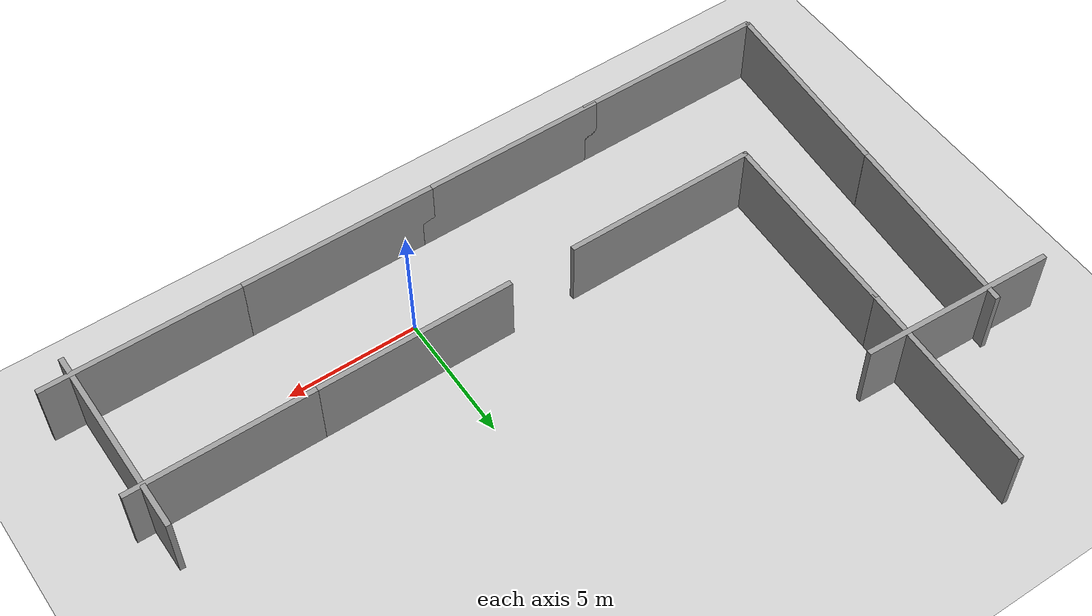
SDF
<sdf version="1.4">
 <world name="default">
  <light name="sun" type="directional">
   <pose>0 0 10 0 -0 0</pose>
   <diffuse>0.8 0.8 0.8 1</diffuse>
   <specular>0.2 0.2 0.2 1</specular>
   <attenuation>
    <range>1000</range>
    <constant>0.9</constant>
    <linear>0.01</linear>
    <quadratic>0.001</quadratic>
   </attenuation>
   <direction>-0.5 0.1 -0.9</direction>
  </light>
  <model name="ground_plane">
   <static>1</static>
   <link name="link">
    <collision name="collision">
     <geometry><plane><normal>0 0 1</normal><size>100 100</size></plane></geometry>
     <surface><friction><ode><mu>100</mu><mu2>50</mu2></ode></friction></surface>
    </collision>
    <visual name="visual">
     <cast_shadows>0</cast_shadows>
     <geometry><plane><normal>0 0 1</normal><size>100 100</size></plane></geometry>
     <material>
      <script><uri>file://media/materials/scripts/gazebo.material</uri><name>Gazebo/Grey</name></script>
     </material>
    </visual>
    <velocity_decay><linear>0</linear><angular>0</angular></velocity_decay>
   </link>
  </model>
  <physics type="ode">
   <max_step_size>0.001</max_step_size>
   <real_time_factor>1</real_time_factor>
   <real_time_update_rate>1000</real_time_update_rate>
   <gravity>0 0 -9.8</gravity>
  </physics>
  <scene><ambient>0.4 0.4 0.4 1</ambient><background>0.7 0.7 0.7 1</background><shadows>1</shadows></scene>
  <spherical_coordinates>
   <surface_model>EARTH_WGS84</surface_model>
   <latitude_deg>0</latitude_deg>
   <longitude_deg>0</longitude_deg>
   <elevation>0</elevation>
   <heading_deg>0</heading_deg>
  </spherical_coordinates>
  <model name="grey_wall">
   <static>1</static>
   <link name="link">
    <pose>0 0 1.4 0 -0 0</pose>
    <collision name="collision"><geometry><box><size>7.5 0.2 2.8</size></box></geometry></collision>
    <visual name="visual">
     <cast_shadows>0</cast_shadows>
     <geometry><box><size>7.5 0.2 2.8</size></box></geometry>
     <material>
      <script>
       <uri>model://grey_wall/materials/scripts</uri>
       <uri>model://grey_wall/materials/textures</uri>
       <name>vrc/grey_wall</name>
      </script>
     </material>
    </visual>
    <velocity_decay><linear>0</linear><angular>0</angular></velocity_decay>
   </link>
   <pose>1 -3 0 0 -0 0</pose>
  </model>
  <model name="grey_wall_0">
   <static>1</static>
   <link name="link">
    <pose>0 0 1.4 0 -0 0</pose>
    <collision name="collision"><geometry><box><size>7.5 0.2 2.8</size></box></geometry></collision>
    <visual name="visual">
     <cast_shadows>0</cast_shadows>
     <geometry><box><size>7.5 0.2 2.8</size></box></geometry>
     <material>
      <script>
       <uri>model://grey_wall/materials/scripts</uri>
       <uri>model://grey_wall/materials/textures</uri>
       <name>vrc/grey_wall</name>
      </script>
     </material>
    </visual>
    <velocity_decay><linear>0</linear><angular>0</angular></velocity_decay>
   </link>
   <pose>1 2 0 0 -0 0</pose>
  </model>
  <model name="grey_wall_1">
   <static>1</static>
   <link name="link">
    <pose>0 0 1.4 0 -0 0</pose>
    <collision name="collision"><geometry><box><size>7.5 0.2 2.8</size></box></geometry></collision>
    <visual name="visual">
     <cast_shadows>0</cast_shadows>
     <geometry><box><size>7.5 0.2 2.8</size></box></geometry>
     <material>
      <script>
       <uri>model://grey_wall/materials/scripts</uri>
       <uri>model://grey_wall/materials/textures</uri>
       <name>vrc/grey_wall</name>
      </script>
     </material>
    </visual>
    <velocity_decay><linear>0</linear><angular>0</angular></velocity_decay>
   </link>
   <pose>8.49043 -3 0 0 -0 0</pose>
  </model>
  <model name="grey_wall_2">
   <static>1</static>
   <link name="link">
    <pose>0 0 1.4 0 -0 0</pose>
    <collision name="collision"><geometry><box><size>7.5 0.2 2.8</size></box></geometry></collision>
    <visual name="visual">
     <cast_shadows>0</cast_shadows>
     <geometry><box><size>7.5 0.2 2.8</size></box></geometry>
     <material>
      <script>
       <uri>model://grey_wall/materials/scripts</uri>
       <uri>model://grey_wall/materials/textures</uri>
       <name>vrc/grey_wall</name>
      </script>
     </material>
    </visual>
    <velocity_decay><linear>0</linear><angular>0</angular></velocity_decay>
   </link>
   <pose>8 2 0 0 -0 0</pose>
  </model>
  <model name="grey_wall_3">
   <static>1</static>
   <link name="link">
    <pose>0 0 1.4 0 -0 0</pose>
    <collision name="collision"><geometry><box><size>7.5 0.2 2.8</size></box></geometry></collision>
    <visual name="visual">
     <cast_shadows>0</cast_shadows>
     <geometry><box><size>7.5 0.2 2.8</size></box></geometry>
     <material>
      <script>
       <uri>model://grey_wall/materials/scripts</uri>
       <uri>model://grey_wall/materials/textures</uri>
       <name>vrc/grey_wall</name>
      </script>
     </material>
    </visual>
    <velocity_decay><linear>0</linear><angular>0</angular></velocity_decay>
   </link>
   <pose>-6 -3 0 0 -0 0</pose>
  </model>
  <model name="grey_wall_4">
   <static>1</static>
   <link name="link">
    <pose>0 0 1.4 0 -0 0</pose>
    <collision name="collision"><geometry><box><size>7.5 0.2 2.8</size></box></geometry></collision>
    <visual name="visual">
     <cast_shadows>0</cast_shadows>
     <geometry><box><size>7.5 0.2 2.8</size></box></geometry>
     <material>
      <script>
       <uri>model://grey_wall/materials/scripts</uri>
       <uri>model://grey_wall/materials/textures</uri>
       <name>vrc/grey_wall</name>
      </script>
     </material>
    </visual>
    <velocity_decay><linear>0</linear><angular>0</angular></velocity_decay>
   </link>
   <pose>-9 2 0 0 -0 0</pose>
  </model>
  <model name="grey_wall_5">
   <static>1</static>
   <link name="link">
    <pose>0 0 1.4 0 -0 0</pose>
    <collision name="collision"><geometry><box><size>7.5 0.2 2.8</size></box></geometry></collision>
    <visual name="visual">
     <cast_shadows>0</cast_shadows>
     <geometry><box><size>7.5 0.2 2.8</size></box></geometry>
     <material>
      <script>
       <uri>model://grey_wall/materials/scripts</uri>
       <uri>model://grey_wall/materials/textures</uri>
       <name>vrc/grey_wall</name>
      </script>
     </material>
    </visual>
    <velocity_decay><linear>0</linear><angular>0</angular></velocity_decay>
   </link>
   <pose>-13 -3 0 0 -0 0</pose>
  </model>
  <model name="grey_wall_6">
   <static>1</static>
   <link name="link">
    <pose>0 0 1.4 0 -0 0</pose>
    <collision name="collision"><geometry><box><size>7.5 0.2 2.8</size></box></geometry></collision>
    <visual name="visual">
     <cast_shadows>0</cast_shadows>
     <geometry><box><size>7.5 0.2 2.8</size></box></geometry>
     <material>
      <script>
       <uri>model://grey_wall/materials/scripts</uri>
       <uri>model://grey_wall/materials/textures</uri>
       <name>vrc/grey_wall</name>
      </script>
     </material>
    </visual>
    <velocity_decay><linear>0</linear><angular>0</angular></velocity_decay>
   </link>
   <pose>-12.5433 5.67138 0 0 0 -1.60898</pose>
  </model>
  <model name="grey_wall_7">
   <static>1</static>
   <link name="link">
    <pose>0 0 1.4 0 -0 0</pose>
    <collision name="collision"><geometry><box><size>7.5 0.2 2.8</size></box></geometry></collision>
    <visual name="visual">
     <cast_shadows>0</cast_shadows>
     <geometry><box><size>7.5 0.2 2.8</size></box></geometry>
     <material>
      <script>
       <uri>model://grey_wall/materials/scripts</uri>
       <uri>model://grey_wall/materials/textures</uri>
       <name>vrc/grey_wall</name>
      </script>
     </material>
    </visual>
    <velocity_decay><linear>0</linear><angular>0</angular></velocity_decay>
   </link>
   <pose>-16.4566 0.726865 -0 0 0 -1.64048</pose>
  </model>
  <model name="grey_wall_8">
   <static>1</static>
   <link name="link">
    <pose>0 0 1.4 0 -0 0</pose>
    <collision name="collision"><geometry><box><size>7.5 0.2 2.8</size></box></geometry></collision>
    <visual name="visual">
     <cast_shadows>0</cast_shadows>
     <geometry><box><size>7.5 0.2 2.8</size></box></geometry>
     <material>
      <script>
       <uri>model://grey_wall/materials/scripts</uri>
       <uri>model://grey_wall/materials/textures</uri>
       <name>vrc/grey_wall</name>
      </script>
     </material>
    </visual>
    <velocity_decay><linear>0</linear><angular>0</angular></velocity_decay>
   </link>
   <pose>-15.9648 8.01078 0 0 0 -1.63861</pose>
  </model>
  <model name="grey_wall_9">
   <static>1</static>
   <link name="link">
    <pose>0 0 1.4 0 -0 0</pose>
    <collision name="collision"><geometry><box><size>7.5 0.2 2.8</size></box></geometry></collision>
    <visual name="visual">
     <cast_shadows>0</cast_shadows>
     <geometry><box><size>7.5 0.2 2.8</size></box></geometry>
     <material>
      <script>
       <uri>model://grey_wall/materials/scripts</uri>
       <uri>model://grey_wall/materials/textures</uri>
       <name>vrc/grey_wall</name>
      </script>
     </material>
    </visual>
    <velocity_decay><linear>0</linear><angular>0</angular></velocity_decay>
   </link>
   <pose>-14.4877 11.1589 -0 0 0 -0.044672</pose>
  </model>
  <model name="grey_wall_10">
   <static>1</static>
   <link name="link">
    <pose>0 0 1.4 0 -0 0</pose>
    <collision name="collision"><geometry><box><size>7.5 0.2 2.8</size></box></geometry></collision>
    <visual name="visual">
     <cast_shadows>0</cast_shadows>
     <geometry><box><size>7.5 0.2 2.8</size></box></geometry>
     <material>
      <script>
       <uri>model://grey_wall/materials/scripts</uri>
       <uri>model://grey_wall/materials/textures</uri>
       <name>vrc/grey_wall</name>
      </script>
     </material>
    </visual>
    <velocity_decay><linear>0</linear><angular>0</angular></velocity_decay>
   </link>
   <pose>-12.2456 13.0005 0 0 0 -1.61469</pose>
  </model>
  <model name="grey_wall_11">
   <static>1</static>
   <link name="link">
    <pose>0 0 1.4 0 -0 0</pose>
    <collision name="collision"><geometry><box><size>7.5 0.2 2.8</size></box></geometry></collision>
    <visual name="visual">
     <cast_shadows>0</cast_shadows>
     <geometry><box><size>7.5 0.2 2.8</size></box></geometry>
     <material>
      <script>
       <uri>model://grey_wall/materials/scripts</uri>
       <uri>model://grey_wall/materials/textures</uri>
       <name>vrc/grey_wall</name>
      </script>
     </material>
    </visual>
    <velocity_decay><linear>0</linear><angular>0</angular></velocity_decay>
   </link>
   <pose>11 0 0 0 0 -1.56892</pose>
  </model>
 </world>
</sdf>
